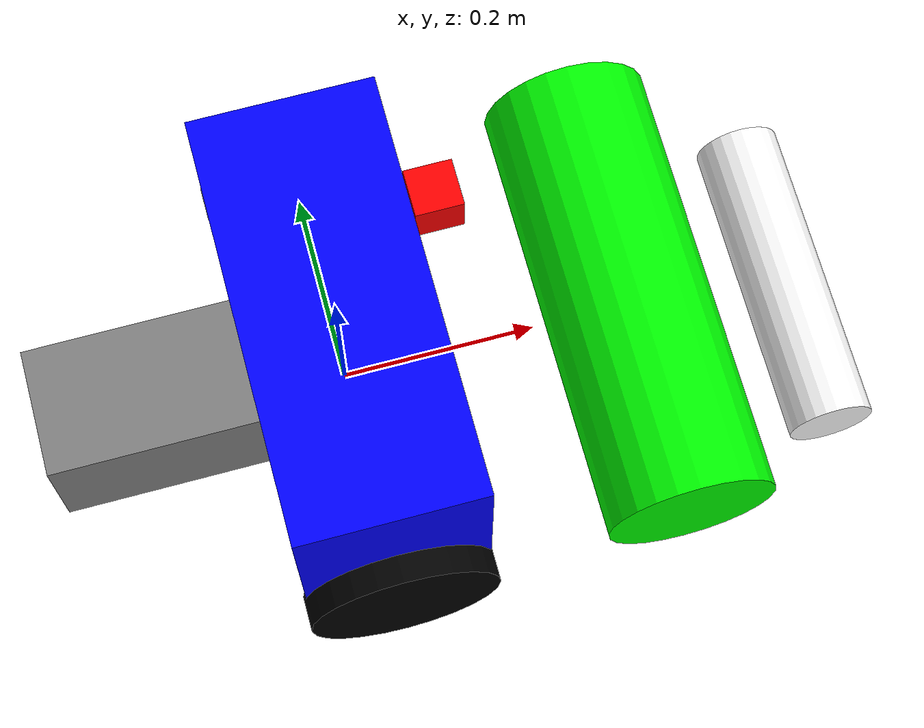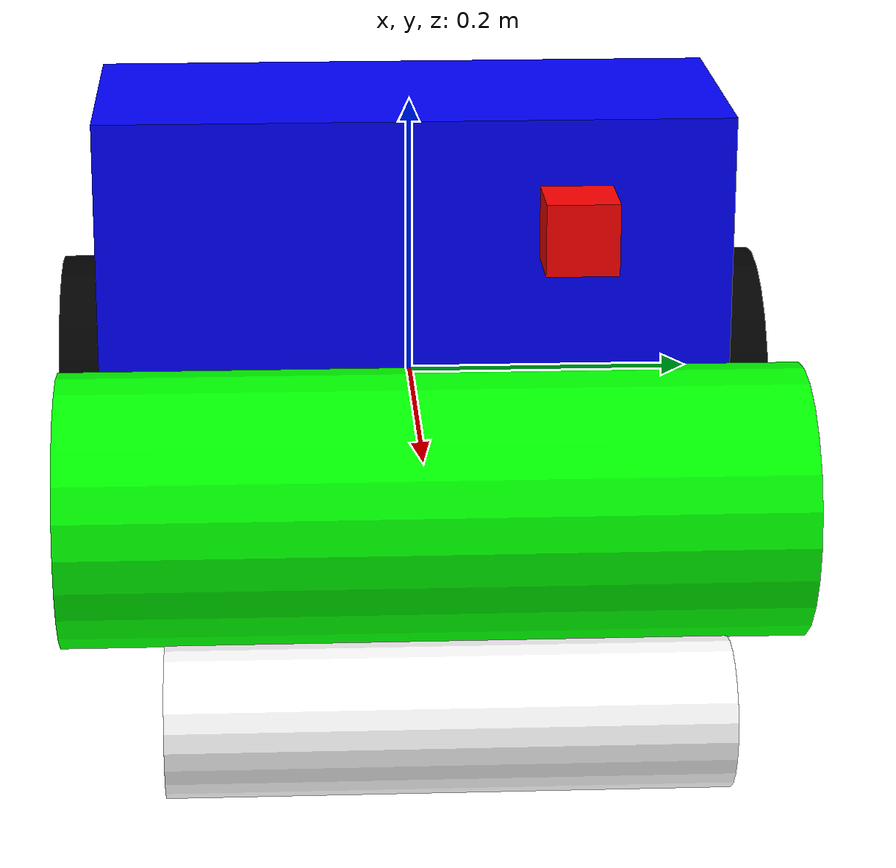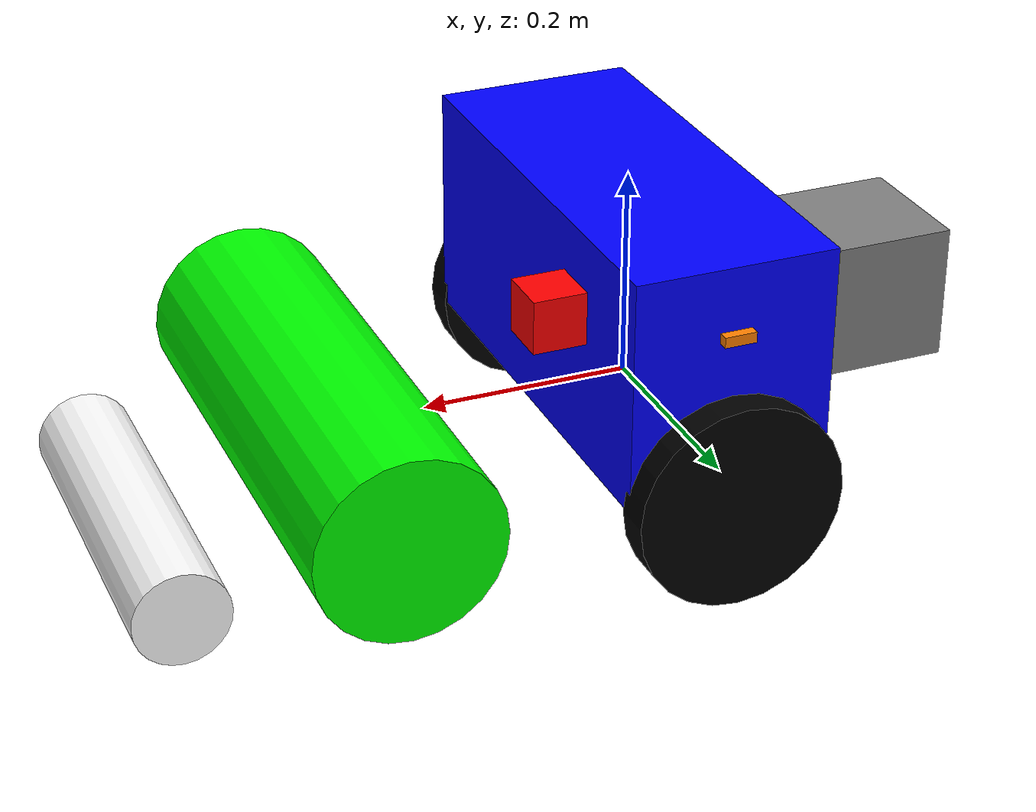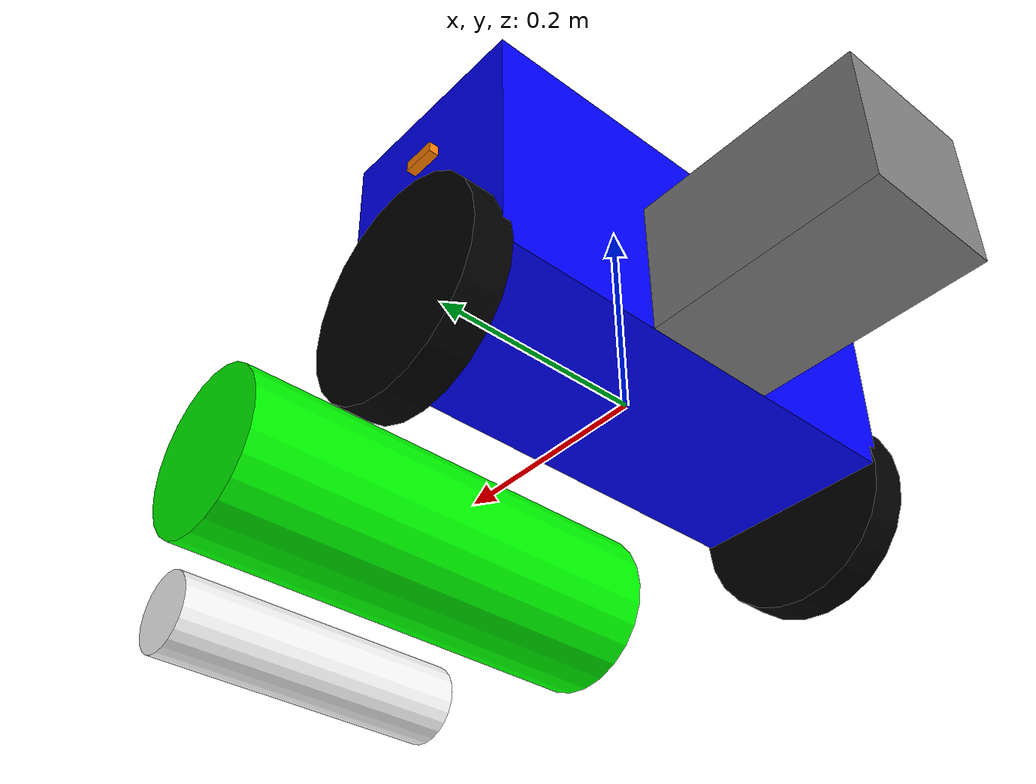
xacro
<?xml version="1.0"?>
<robot xmlns:xacro="http://www.ros.org/wiki/xacro" name="mower">

  <!-- Include all component files -->
  <xacro:include filename="$(find mower_description)/urdf/components/properties.xacro"/>
  <xacro:include filename="$(find mower_description)/urdf/components/materials.xacro"/>
  <xacro:include filename="$(find mower_description)/urdf/components/chassis.xacro"/>
  <xacro:include filename="$(find mower_description)/urdf/components/wheels.xacro"/>
  <xacro:include filename="$(find mower_description)/urdf/components/cutting_system.xacro"/>
  <xacro:include filename="$(find mower_description)/urdf/components/sensors.xacro"/>
  <xacro:include filename="$(find mower_description)/urdf/components/ros2_control.xacro"/>

</robot>

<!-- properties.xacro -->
<robot xmlns:xacro="http://www.ros.org/wiki/xacro">

  <!-- Chassis Properties -->
  <xacro:property name="chassis_length" value="0.19" />
  <xacro:property name="chassis_width" value="0.44" />
  <xacro:property name="chassis_height" value="0.22" />
  <xacro:property name="chassis_mass" value="2.27" />

  <!-- Counterweight Properties -->
  <xacro:property name="counterweight_length" value="0.21" />
  <xacro:property name="counterweight_width" value="0.13" />
  <xacro:property name="counterweight_height" value="0.13" />
  <xacro:property name="counterweight_mass" value="9.07" />

  <!-- Wheel Properties -->
  <xacro:property name="wheel_radius" value="0.0975" />
  <xacro:property name="wheel_width" value="0.036" />
  <xacro:property name="wheel_mass" value="1.81" />
  <xacro:property name="wheel_separation" value="0.46" />

  <!-- Front Roller Properties -->
  <xacro:property name="front_roller_radius" value="0.04445" />
  <xacro:property name="front_roller_width" value="0.33" />
  <xacro:property name="front_roller_mass" value="0.45" />

  <!-- Reel Properties -->
  <xacro:property name="reel_radius" value="0.0875" />
  <xacro:property name="reel_width" value="0.47" />
  <xacro:property name="reel_mass" value="11.34" />

  <!-- Reel Motor Properties -->
  <xacro:property name="reel_motor_mass" value="1.0" />

  <!-- Sensor Positions -->
  <!-- IMU sensor position -->
  <xacro:property name="imu_x" value="0.0775" />
  <xacro:property name="imu_y" value="0.0875" />
  <xacro:property name="imu_z" value="0.169" />

  <!-- GPS sensor position -->
  <xacro:property name="gps_x" value="0.0" />
  <xacro:property name="gps_y" value="0.21415" />
  <xacro:property name="gps_z" value="0.253" />

</robot>

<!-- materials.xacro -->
<robot xmlns:xacro="http://www.ros.org/wiki/xacro">

  <!-- Blue material for chassis -->
  <material name="blue">
    <color rgba="0.0 0.0 1.0 1.0"/>
  </material>

  <!-- Red material for reel motor -->
  <material name="red">
    <color rgba="1.0 0.0 0.0 1.0"/>
  </material>

  <!-- Green material for cutting reel -->
  <material name="green">
    <color rgba="0.0 1.0 0.0 1.0"/>
  </material>

  <!-- Gray material for counterweight -->
  <material name="gray">
    <color rgba="0.5 0.5 0.5 1.0"/>
  </material>

  <!-- Black material for wheels -->
  <material name="black">
    <color rgba="0.0 0.0 0.0 1.0"/>
  </material>

  <!-- White material for front roller -->
  <material name="white">
    <color rgba="1.0 1.0 1.0 1.0"/>
  </material>

  <!-- Purple material for IMU -->
  <material name="purple">
    <color rgba="0.5 0.0 0.5 1.0"/>
  </material>

  <!-- Orange material for GPS -->
  <material name="orange">
    <color rgba="1.0 0.5 0.0 1.0"/>
  </material>

</robot>

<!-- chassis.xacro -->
<robot xmlns:xacro="http://www.ros.org/wiki/xacro">

  <!-- Root Link (dummy link without inertia for KDL compatibility) -->
  <link name="base_footprint">
    <!-- No inertia on root link - KDL requirement -->
  </link>

  <!-- Fixed joint connecting root to actual chassis -->
  <joint name="base_footprint_joint" type="fixed">
    <parent link="base_footprint"/>
    <child link="base_link"/>
    <origin xyz="0 0 ${wheel_radius}" rpy="0 0 0"/>
  </joint>

  <!-- Base Link (main chassis) - now as child link with inertia -->
  <link name="base_link">
    <inertial>
      <origin xyz="0 0 0" rpy="0 0 0"/>
      <mass value="${chassis_mass}"/>
      <inertia ixx="${chassis_mass * (chassis_width*chassis_width + chassis_height*chassis_height) / 12}"
               ixy="0.0" ixz="0.0"
               iyy="${chassis_mass * (chassis_length*chassis_length + chassis_height*chassis_height) / 12}"
               iyz="0.0"
               izz="${chassis_mass * (chassis_length*chassis_length + chassis_width*chassis_width) / 12}"/>
    </inertial>
    <visual>
      <origin xyz="0 0 0" rpy="0 0 0"/>
      <geometry>
        <box size="${chassis_length} ${chassis_width} ${chassis_height}"/>
      </geometry>
      <material name="blue"/>
    </visual>
    <collision>
      <origin xyz="0 0 0" rpy="0 0 0"/>
      <geometry>
        <box size="${chassis_length} ${chassis_width} ${chassis_height}"/>
      </geometry>
    </collision>
  </link>

  <!-- Counterweight Link -->
  <link name="counterweight">
    <visual>
      <geometry>
        <box size="${counterweight_length} ${counterweight_width} ${counterweight_height}"/>
      </geometry>
      <material name="gray"/>
    </visual>
    <collision>
      <geometry>
        <box size="${counterweight_length} ${counterweight_width} ${counterweight_height}"/>
      </geometry>
    </collision>
    <inertial>
      <mass value="${counterweight_mass}"/>
      <inertia ixx="${counterweight_mass * (counterweight_width*counterweight_width + counterweight_height*counterweight_height) / 12}"
               ixy="0.0" ixz="0.0"
               iyy="${counterweight_mass * (counterweight_length*counterweight_length + counterweight_height*counterweight_height) / 12}"
               iyz="0.0"
               izz="${counterweight_mass * (counterweight_length*counterweight_length + counterweight_width*counterweight_width) / 12}"/>
    </inertial>
  </link>

  <!-- Counterweight Joint -->
  <joint name="chassis_to_counterweight" type="fixed">
    <parent link="base_link"/>
    <child link="counterweight"/>
    <origin xyz="-${(chassis_length + counterweight_length)/2} 0.0 -${(chassis_height - counterweight_height)/2}" rpy="0 0 0"/>
  </joint>

</robot>

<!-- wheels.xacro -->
<robot xmlns:xacro="http://www.ros.org/wiki/xacro">

  <!-- Right Wheel Link -->
  <link name="right_wheel">
    <visual>
      <origin xyz="0 0 0" rpy="${pi/2} 0 0"/>
      <geometry>
        <cylinder radius="${wheel_radius}" length="${wheel_width}"/>
      </geometry>
      <material name="black"/>
    </visual>
    <collision>
      <origin xyz="0 0 0" rpy="${pi/2} 0 0"/>
      <geometry>
        <cylinder radius="${wheel_radius}" length="${wheel_width}"/>
      </geometry>
    </collision>
    <inertial>
      <mass value="${wheel_mass}"/>
      <inertia ixx="${wheel_mass * (3*wheel_radius*wheel_radius + wheel_width*wheel_width) / 12}"
               ixy="0.0" ixz="0.0"
               iyy="${wheel_mass * wheel_radius*wheel_radius / 2}"
               iyz="0.0"
               izz="${wheel_mass * (3*wheel_radius*wheel_radius + wheel_width*wheel_width) / 12}"/>
    </inertial>
  </link>

  <!-- Right Wheel Joint -->
  <joint name="right_wheel_joint" type="continuous">
    <parent link="base_link"/>
    <child link="right_wheel"/>
    <origin xyz="0.0 -${wheel_separation/2} -${chassis_height/2}" rpy="0 0 0"/>
    <axis xyz="0 1 0"/>
    <dynamics damping="0.7" friction="1.0"/>
  </joint>

  <!-- Left Wheel Link -->
  <link name="left_wheel">
    <visual>
      <origin xyz="0 0 0" rpy="${pi/2} 0 0"/>
      <geometry>
        <cylinder radius="${wheel_radius}" length="${wheel_width}"/>
      </geometry>
      <material name="black"/>
    </visual>
    <collision>
      <origin xyz="0 0 0" rpy="${pi/2} 0 0"/>
      <geometry>
        <cylinder radius="${wheel_radius}" length="${wheel_width}"/>
      </geometry>
    </collision>
    <inertial>
      <mass value="${wheel_mass}"/>
      <inertia ixx="${wheel_mass * (3*wheel_radius*wheel_radius + wheel_width*wheel_width) / 12}"
               ixy="0.0" ixz="0.0"
               iyy="${wheel_mass * wheel_radius*wheel_radius / 2}"
               iyz="0.0"
               izz="${wheel_mass * (3*wheel_radius*wheel_radius + wheel_width*wheel_width) / 12}"/>
    </inertial>
  </link>

  <!-- Left Wheel Joint -->
  <joint name="left_wheel_joint" type="continuous">
    <parent link="base_link"/>
    <child link="left_wheel"/>
    <origin xyz="0.0 ${wheel_separation/2} -${chassis_height/2}" rpy="0 0 0"/>
    <axis xyz="0 1 0"/>
    <dynamics damping="0.7" friction="1.0"/>
  </joint>

</robot>

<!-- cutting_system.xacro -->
<robot xmlns:xacro="http://www.ros.org/wiki/xacro">

  <!-- Front Roller Link -->
  <link name="front_roller">
    <visual>
      <origin xyz="0 0 0" rpy="${pi/2} 0 0"/>
      <geometry>
        <cylinder radius="${front_roller_radius}" length="${front_roller_width}"/>
      </geometry>
      <material name="white"/>
    </visual>
    <collision>
      <origin xyz="0 0 0" rpy="${pi/2} 0 0"/>
      <geometry>
        <cylinder radius="${front_roller_radius}" length="${front_roller_width}"/>
      </geometry>
    </collision>
    <inertial>
      <mass value="${front_roller_mass}"/>
      <inertia ixx="${front_roller_mass * (3*front_roller_radius*front_roller_radius + front_roller_width*front_roller_width) / 12}"
               ixy="0.0" ixz="0.0"
               iyy="${front_roller_mass * front_roller_radius*front_roller_radius / 2}"
               iyz="0.0"
               izz="${front_roller_mass * (3*front_roller_radius*front_roller_radius + front_roller_width*front_roller_width) / 12}"/>
    </inertial>
  </link>

  <!-- Front Roller Joint -->
  <joint name="front_roller_joint" type="continuous">
    <parent link="base_link"/>
    <child link="front_roller"/>
    <origin xyz="0.48 0.0 -${chassis_height/2 + front_roller_radius}" rpy="0 0 0"/>
    <axis xyz="0 1 0"/>
    <dynamics damping="0.5" friction="0.8"/>
  </joint>

  <!-- Reel Link -->
  <link name="reel">
    <visual>
      <origin xyz="0 0 0" rpy="${pi/2} 0 0"/>
      <geometry>
        <cylinder radius="${reel_radius}" length="${reel_width}"/>
      </geometry>
      <material name="green"/>
    </visual>
    <collision>
      <origin xyz="0 0 0" rpy="${pi/2} 0 0"/>
      <geometry>
        <cylinder radius="${reel_radius}" length="${reel_width}"/>
      </geometry>
    </collision>
    <inertial>
      <mass value="${reel_mass}"/>
      <inertia ixx="${reel_mass * (3*reel_radius*reel_radius + reel_width*reel_width) / 12}"
               ixy="0.0" ixz="0.0"
               iyy="${reel_mass * reel_radius*reel_radius / 2}"
               iyz="0.0"
               izz="${reel_mass * (3*reel_radius*reel_radius + reel_width*reel_width) / 12}"/>
    </inertial>
  </link>

  <!-- Reel Joint -->
  <joint name="reel_joint" type="continuous">
    <parent link="base_link"/>
    <child link="reel"/>
    <origin xyz="0.30 0.0 -${chassis_height/2 - 0.02}" rpy="0 0 0"/>
    <axis xyz="0 1 0"/>
    <dynamics damping="0.8" friction="1.2"/>
  </joint>

  <!-- Reel Motor Link -->
  <link name="reel_motor">
    <visual>
      <geometry>
        <box size="0.05 0.05 0.05"/>
      </geometry>
      <material name="red"/>
    </visual>
    <collision>
      <geometry>
        <box size="0.05 0.05 0.05"/>
      </geometry>
    </collision>
    <inertial>
      <mass value="${reel_motor_mass}"/>
      <inertia ixx="${reel_motor_mass * (0.05*0.05 + 0.05*0.05) / 12}"
               ixy="0.0" ixz="0.0"
               iyy="-${reel_motor_mass * (0.05*0.05 + 0.05*0.05) / 12}"
               iyz="0.0"
               izz="${reel_motor_mass * (0.05*0.05 + 0.05*0.05) / 12}"/>
    </inertial>
  </link>

  <!-- Reel Motor Joint -->
  <joint name="chassis_to_reel_motor" type="fixed">
    <parent link="base_link"/>
    <child link="reel_motor"/>
    <origin xyz="0.125 0.11 0.04" rpy="0 0 0"/>
  </joint>

</robot>

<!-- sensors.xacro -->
<robot xmlns:xacro="http://www.ros.org/wiki/xacro">

  <!-- IMU Sensor Link -->
  <link name="imu_link">
    <visual>
      <geometry>
        <box size="0.02 0.02 0.01"/>
      </geometry>
      <material name="purple"/>
    </visual>
    <collision>
      <geometry>
        <box size="0.02 0.02 0.01"/>
      </geometry>
    </collision>
    <inertial>
      <mass value="0.01"/>
      <inertia ixx="0.000001" ixy="0.0" ixz="0.0" iyy="0.000001" iyz="0.0" izz="0.000001"/>
    </inertial>
  </link>

  <!-- IMU Sensor Joint -->
  <joint name="base_to_imu" type="fixed">
    <parent link="base_link"/>
    <child link="imu_link"/>
    <origin xyz="${imu_x} ${imu_y} ${imu_z - wheel_radius - chassis_height/2}" rpy="0 0 0"/>
  </joint>

  <!-- GPS Sensor Link -->
  <link name="gps_link">
    <visual>
      <geometry>
        <box size="0.03 0.03 0.01"/>
      </geometry>
      <material name="orange"/>
    </visual>
    <collision>
      <geometry>
        <box size="0.03 0.03 0.01"/>
      </geometry>
    </collision>
    <inertial>
      <mass value="0.01"/>
      <inertia ixx="0.000001" ixy="0.0" ixz="0.0" iyy="0.000001" iyz="0.0" izz="0.000001"/>
    </inertial>
  </link>

  <!-- GPS Sensor Joint -->
  <joint name="base_to_gps" type="fixed">
    <parent link="base_link"/>
    <child link="gps_link"/>
    <origin xyz="${gps_x} ${gps_y} ${gps_z - wheel_radius - chassis_height/2}" rpy="0 0 0"/>
  </joint>

</robot>
